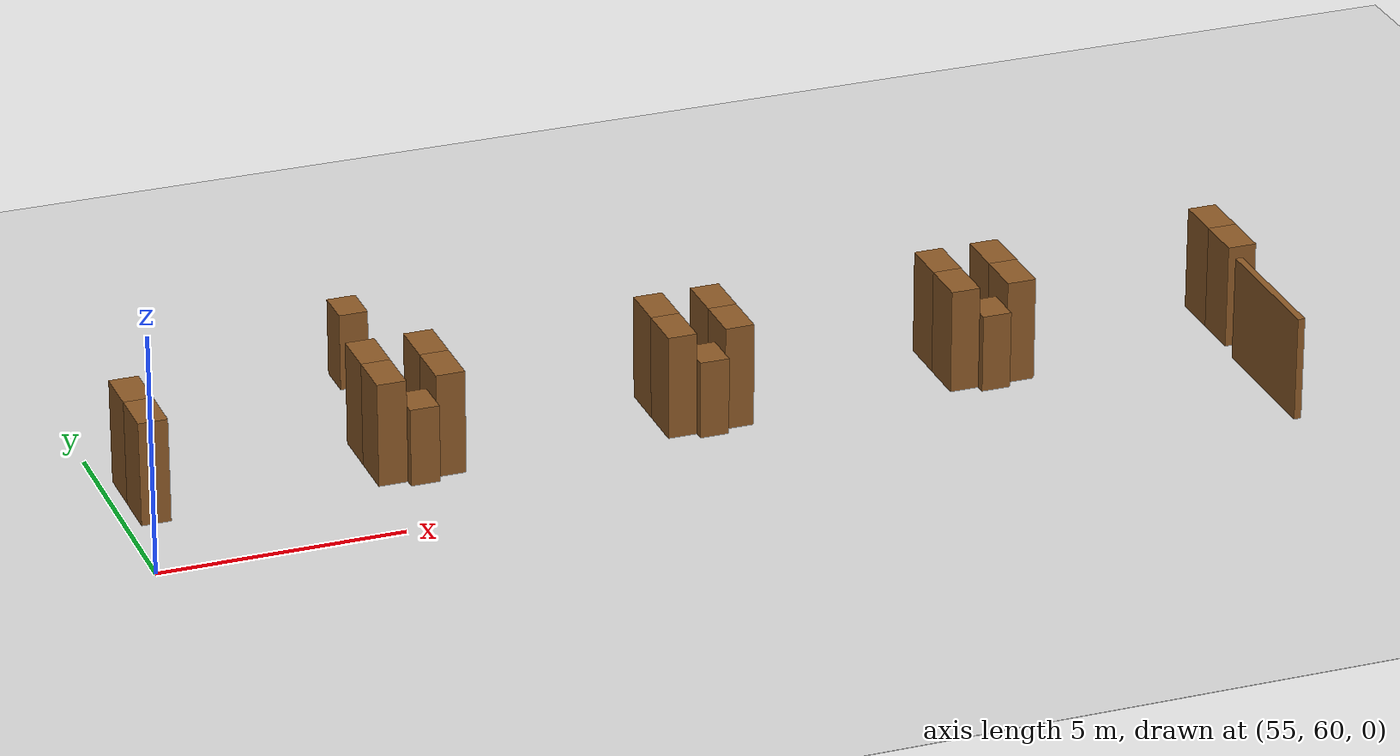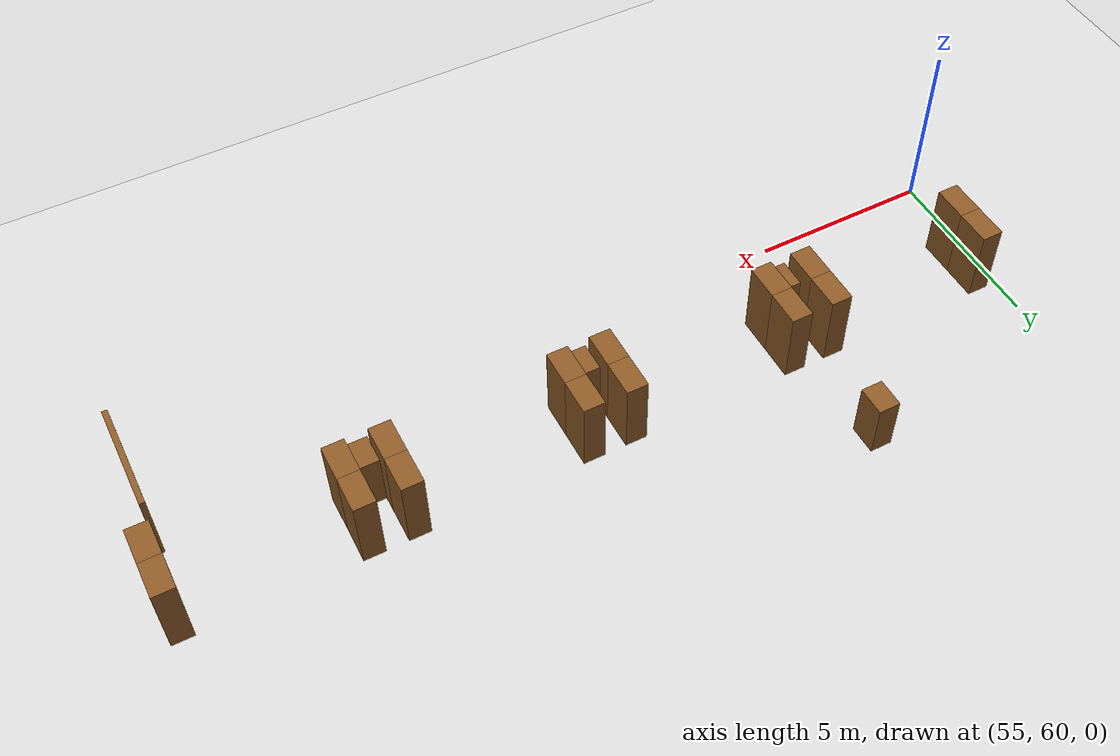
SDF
<sdf version="1.9">
 <world name="realistic_warehouse_150x200m">
  <model name="ground_plane">
   <static>true</static>
   <pose>68.5 102.0 0 0 0 0</pose>
   <link name="ground_link">
    <visual name="ground_visual">
     <geometry><box><size>127.0 194.0 0.01</size></box></geometry>
     <material><ambient>0.85 0.85 0.85 1.0</ambient><diffuse>0.85 0.85 0.85 1.0</diffuse></material>
    </visual>
    <collision name="ground_visual_collision">
     <geometry><box><size>127.0 194.0 0.01</size></box></geometry>
    </collision>
    <collision name="ground_collision">
     <geometry><plane><normal>0 0 1</normal><size>127.0 194.0</size></plane></geometry>
    </collision>
   </link>
  </model>
  <model name="rack_Zone_H_A0_S0_1225">
   <static>true</static>
   <pose>55.6 62.5 1.1 0 0 0</pose>
   <link name="rack_Zone_H_A0_S0_1225_link">
    <visual name="rack_Zone_H_A0_S0_1225_vis">
     <geometry><box><size>0.6 1.0 2.2</size></box></geometry>
     <material><ambient>0.55 0.35 0.15 1.0</ambient><diffuse>0.55 0.35 0.15 1.0</diffuse></material>
    </visual>
    <collision name="rack_Zone_H_A0_S0_1225_vis_collision">
     <geometry><box><size>0.6 1.0 2.2</size></box></geometry>
    </collision>
   </link>
  </model>
  <model name="rack_Zone_H_A0_S0_1226">
   <static>true</static>
   <pose>55.6 63.5 1.1 0 0 0</pose>
   <link name="rack_Zone_H_A0_S0_1226_link">
    <visual name="rack_Zone_H_A0_S0_1226_vis">
     <geometry><box><size>0.6 1.0 2.2</size></box></geometry>
     <material><ambient>0.55 0.35 0.15 1.0</ambient><diffuse>0.55 0.35 0.15 1.0</diffuse></material>
    </visual>
    <collision name="rack_Zone_H_A0_S0_1226_vis_collision">
     <geometry><box><size>0.6 1.0 2.2</size></box></geometry>
    </collision>
   </link>
  </model>
  <model name="rack_Zone_H_A1_S0_1267">
   <static>true</static>
   <pose>60.4 62.5 1.1 0 0 0</pose>
   <link name="rack_Zone_H_A1_S0_1267_link">
    <visual name="rack_Zone_H_A1_S0_1267_vis">
     <geometry><box><size>0.6 1.0 2.2</size></box></geometry>
     <material><ambient>0.55 0.35 0.15 1.0</ambient><diffuse>0.55 0.35 0.15 1.0</diffuse></material>
    </visual>
    <collision name="rack_Zone_H_A1_S0_1267_vis_collision">
     <geometry><box><size>0.6 1.0 2.2</size></box></geometry>
    </collision>
   </link>
  </model>
  <model name="rack_Zone_H_A1_S0_1268">
   <static>true</static>
   <pose>60.4 63.5 1.1 0 0 0</pose>
   <link name="rack_Zone_H_A1_S0_1268_link">
    <visual name="rack_Zone_H_A1_S0_1268_vis">
     <geometry><box><size>0.6 1.0 2.2</size></box></geometry>
     <material><ambient>0.55 0.35 0.15 1.0</ambient><diffuse>0.55 0.35 0.15 1.0</diffuse></material>
    </visual>
    <collision name="rack_Zone_H_A1_S0_1268_vis_collision">
     <geometry><box><size>0.6 1.0 2.2</size></box></geometry>
    </collision>
   </link>
  </model>
  <model name="rack_Zone_H_A1_S0_1269">
   <static>true</static>
   <pose>61.6 62.5 1.1 0 0 0</pose>
   <link name="rack_Zone_H_A1_S0_1269_link">
    <visual name="rack_Zone_H_A1_S0_1269_vis">
     <geometry><box><size>0.6 1.0 2.2</size></box></geometry>
     <material><ambient>0.55 0.35 0.15 1.0</ambient><diffuse>0.55 0.35 0.15 1.0</diffuse></material>
    </visual>
    <collision name="rack_Zone_H_A1_S0_1269_vis_collision">
     <geometry><box><size>0.6 1.0 2.2</size></box></geometry>
    </collision>
   </link>
  </model>
  <model name="rack_Zone_H_A1_S0_1270">
   <static>true</static>
   <pose>61.6 63.5 1.1 0 0 0</pose>
   <link name="rack_Zone_H_A1_S0_1270_link">
    <visual name="rack_Zone_H_A1_S0_1270_vis">
     <geometry><box><size>0.6 1.0 2.2</size></box></geometry>
     <material><ambient>0.55 0.35 0.15 1.0</ambient><diffuse>0.55 0.35 0.15 1.0</diffuse></material>
    </visual>
    <collision name="rack_Zone_H_A1_S0_1270_vis_collision">
     <geometry><box><size>0.6 1.0 2.2</size></box></geometry>
    </collision>
   </link>
  </model>
  <model name="rack_Zone_H_A1_S0_1271">
   <static>true</static>
   <pose>61.0 62.2 0.8250000000000001 0 0 0</pose>
   <link name="rack_Zone_H_A1_S0_1271_link">
    <visual name="rack_Zone_H_A1_S0_1271_vis">
     <geometry><box><size>0.6 0.8 1.6500000000000001</size></box></geometry>
     <material><ambient>0.55 0.35 0.15 1.0</ambient><diffuse>0.55 0.35 0.15 1.0</diffuse></material>
    </visual>
    <collision name="rack_Zone_H_A1_S0_1271_vis_collision">
     <geometry><box><size>0.6 0.8 1.6500000000000001</size></box></geometry>
    </collision>
   </link>
  </model>
  <model name="rack_Zone_H_A1_S1_1276">
   <static>true</static>
   <pose>61.0 66.7 0.8250000000000001 0 0 0</pose>
   <link name="rack_Zone_H_A1_S1_1276_link">
    <visual name="rack_Zone_H_A1_S1_1276_vis">
     <geometry><box><size>0.6 0.8 1.6500000000000001</size></box></geometry>
     <material><ambient>0.55 0.35 0.15 1.0</ambient><diffuse>0.55 0.35 0.15 1.0</diffuse></material>
    </visual>
    <collision name="rack_Zone_H_A1_S1_1276_vis_collision">
     <geometry><box><size>0.6 0.8 1.6500000000000001</size></box></geometry>
    </collision>
   </link>
  </model>
  <model name="rack_Zone_H_A2_S0_1311">
   <static>true</static>
   <pose>66.4 62.5 1.1 0 0 0</pose>
   <link name="rack_Zone_H_A2_S0_1311_link">
    <visual name="rack_Zone_H_A2_S0_1311_vis">
     <geometry><box><size>0.6 1.0 2.2</size></box></geometry>
     <material><ambient>0.55 0.35 0.15 1.0</ambient><diffuse>0.55 0.35 0.15 1.0</diffuse></material>
    </visual>
    <collision name="rack_Zone_H_A2_S0_1311_vis_collision">
     <geometry><box><size>0.6 1.0 2.2</size></box></geometry>
    </collision>
   </link>
  </model>
  <model name="rack_Zone_H_A2_S0_1312">
   <static>true</static>
   <pose>66.4 63.5 1.1 0 0 0</pose>
   <link name="rack_Zone_H_A2_S0_1312_link">
    <visual name="rack_Zone_H_A2_S0_1312_vis">
     <geometry><box><size>0.6 1.0 2.2</size></box></geometry>
     <material><ambient>0.55 0.35 0.15 1.0</ambient><diffuse>0.55 0.35 0.15 1.0</diffuse></material>
    </visual>
    <collision name="rack_Zone_H_A2_S0_1312_vis_collision">
     <geometry><box><size>0.6 1.0 2.2</size></box></geometry>
    </collision>
   </link>
  </model>
  <model name="rack_Zone_H_A2_S0_1313">
   <static>true</static>
   <pose>67.6 62.5 1.1 0 0 0</pose>
   <link name="rack_Zone_H_A2_S0_1313_link">
    <visual name="rack_Zone_H_A2_S0_1313_vis">
     <geometry><box><size>0.6 1.0 2.2</size></box></geometry>
     <material><ambient>0.55 0.35 0.15 1.0</ambient><diffuse>0.55 0.35 0.15 1.0</diffuse></material>
    </visual>
    <collision name="rack_Zone_H_A2_S0_1313_vis_collision">
     <geometry><box><size>0.6 1.0 2.2</size></box></geometry>
    </collision>
   </link>
  </model>
  <model name="rack_Zone_H_A2_S0_1314">
   <static>true</static>
   <pose>67.6 63.5 1.1 0 0 0</pose>
   <link name="rack_Zone_H_A2_S0_1314_link">
    <visual name="rack_Zone_H_A2_S0_1314_vis">
     <geometry><box><size>0.6 1.0 2.2</size></box></geometry>
     <material><ambient>0.55 0.35 0.15 1.0</ambient><diffuse>0.55 0.35 0.15 1.0</diffuse></material>
    </visual>
    <collision name="rack_Zone_H_A2_S0_1314_vis_collision">
     <geometry><box><size>0.6 1.0 2.2</size></box></geometry>
    </collision>
   </link>
  </model>
  <model name="rack_Zone_H_A2_S0_1315">
   <static>true</static>
   <pose>67.0 62.2 0.8250000000000001 0 0 0</pose>
   <link name="rack_Zone_H_A2_S0_1315_link">
    <visual name="rack_Zone_H_A2_S0_1315_vis">
     <geometry><box><size>0.6 0.8 1.6500000000000001</size></box></geometry>
     <material><ambient>0.55 0.35 0.15 1.0</ambient><diffuse>0.55 0.35 0.15 1.0</diffuse></material>
    </visual>
    <collision name="rack_Zone_H_A2_S0_1315_vis_collision">
     <geometry><box><size>0.6 0.8 1.6500000000000001</size></box></geometry>
    </collision>
   </link>
  </model>
  <model name="rack_Zone_H_A3_S0_1355">
   <static>true</static>
   <pose>72.4 62.5 1.1 0 0 0</pose>
   <link name="rack_Zone_H_A3_S0_1355_link">
    <visual name="rack_Zone_H_A3_S0_1355_vis">
     <geometry><box><size>0.6 1.0 2.2</size></box></geometry>
     <material><ambient>0.55 0.35 0.15 1.0</ambient><diffuse>0.55 0.35 0.15 1.0</diffuse></material>
    </visual>
    <collision name="rack_Zone_H_A3_S0_1355_vis_collision">
     <geometry><box><size>0.6 1.0 2.2</size></box></geometry>
    </collision>
   </link>
  </model>
  <model name="rack_Zone_H_A3_S0_1356">
   <static>true</static>
   <pose>72.4 63.5 1.1 0 0 0</pose>
   <link name="rack_Zone_H_A3_S0_1356_link">
    <visual name="rack_Zone_H_A3_S0_1356_vis">
     <geometry><box><size>0.6 1.0 2.2</size></box></geometry>
     <material><ambient>0.55 0.35 0.15 1.0</ambient><diffuse>0.55 0.35 0.15 1.0</diffuse></material>
    </visual>
    <collision name="rack_Zone_H_A3_S0_1356_vis_collision">
     <geometry><box><size>0.6 1.0 2.2</size></box></geometry>
    </collision>
   </link>
  </model>
  <model name="rack_Zone_H_A3_S0_1357">
   <static>true</static>
   <pose>73.6 62.5 1.1 0 0 0</pose>
   <link name="rack_Zone_H_A3_S0_1357_link">
    <visual name="rack_Zone_H_A3_S0_1357_vis">
     <geometry><box><size>0.6 1.0 2.2</size></box></geometry>
     <material><ambient>0.55 0.35 0.15 1.0</ambient><diffuse>0.55 0.35 0.15 1.0</diffuse></material>
    </visual>
    <collision name="rack_Zone_H_A3_S0_1357_vis_collision">
     <geometry><box><size>0.6 1.0 2.2</size></box></geometry>
    </collision>
   </link>
  </model>
  <model name="rack_Zone_H_A3_S0_1358">
   <static>true</static>
   <pose>73.6 63.5 1.1 0 0 0</pose>
   <link name="rack_Zone_H_A3_S0_1358_link">
    <visual name="rack_Zone_H_A3_S0_1358_vis">
     <geometry><box><size>0.6 1.0 2.2</size></box></geometry>
     <material><ambient>0.55 0.35 0.15 1.0</ambient><diffuse>0.55 0.35 0.15 1.0</diffuse></material>
    </visual>
    <collision name="rack_Zone_H_A3_S0_1358_vis_collision">
     <geometry><box><size>0.6 1.0 2.2</size></box></geometry>
    </collision>
   </link>
  </model>
  <model name="rack_Zone_H_A3_S0_1359">
   <static>true</static>
   <pose>73.0 62.2 0.8250000000000001 0 0 0</pose>
   <link name="rack_Zone_H_A3_S0_1359_link">
    <visual name="rack_Zone_H_A3_S0_1359_vis">
     <geometry><box><size>0.6 0.8 1.6500000000000001</size></box></geometry>
     <material><ambient>0.55 0.35 0.15 1.0</ambient><diffuse>0.55 0.35 0.15 1.0</diffuse></material>
    </visual>
    <collision name="rack_Zone_H_A3_S0_1359_vis_collision">
     <geometry><box><size>0.6 0.8 1.6500000000000001</size></box></geometry>
    </collision>
   </link>
  </model>
  <model name="aisle_L_Zone_H_A4_entry_1397">
   <static>true</static>
   <pose>78.1 60.0 1.1 0 0 0</pose>
   <link name="aisle_L_Zone_H_A4_entry_1397_link">
    <visual name="aisle_L_Zone_H_A4_entry_1397_vis">
     <geometry><box><size>0.15 3.0 2.2</size></box></geometry>
     <material><ambient>0.55 0.35 0.15 1.0</ambient><diffuse>0.55 0.35 0.15 1.0</diffuse></material>
    </visual>
    <collision name="aisle_L_Zone_H_A4_entry_1397_vis_collision">
     <geometry><box><size>0.15 3.0 2.2</size></box></geometry>
    </collision>
   </link>
  </model>
  <model name="rack_Zone_H_A4_S0_1399">
   <static>true</static>
   <pose>78.4 62.5 1.1 0 0 0</pose>
   <link name="rack_Zone_H_A4_S0_1399_link">
    <visual name="rack_Zone_H_A4_S0_1399_vis">
     <geometry><box><size>0.6 1.0 2.2</size></box></geometry>
     <material><ambient>0.55 0.35 0.15 1.0</ambient><diffuse>0.55 0.35 0.15 1.0</diffuse></material>
    </visual>
    <collision name="rack_Zone_H_A4_S0_1399_vis_collision">
     <geometry><box><size>0.6 1.0 2.2</size></box></geometry>
    </collision>
   </link>
  </model>
  <model name="rack_Zone_H_A4_S0_1400">
   <static>true</static>
   <pose>78.4 63.5 1.1 0 0 0</pose>
   <link name="rack_Zone_H_A4_S0_1400_link">
    <visual name="rack_Zone_H_A4_S0_1400_vis">
     <geometry><box><size>0.6 1.0 2.2</size></box></geometry>
     <material><ambient>0.55 0.35 0.15 1.0</ambient><diffuse>0.55 0.35 0.15 1.0</diffuse></material>
    </visual>
    <collision name="rack_Zone_H_A4_S0_1400_vis_collision">
     <geometry><box><size>0.6 1.0 2.2</size></box></geometry>
    </collision>
   </link>
  </model>
 </world>
</sdf>
